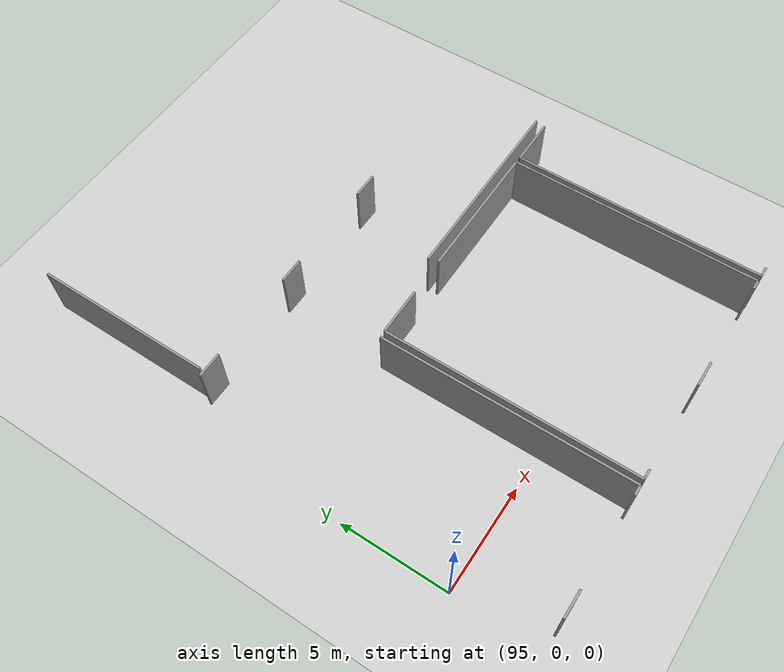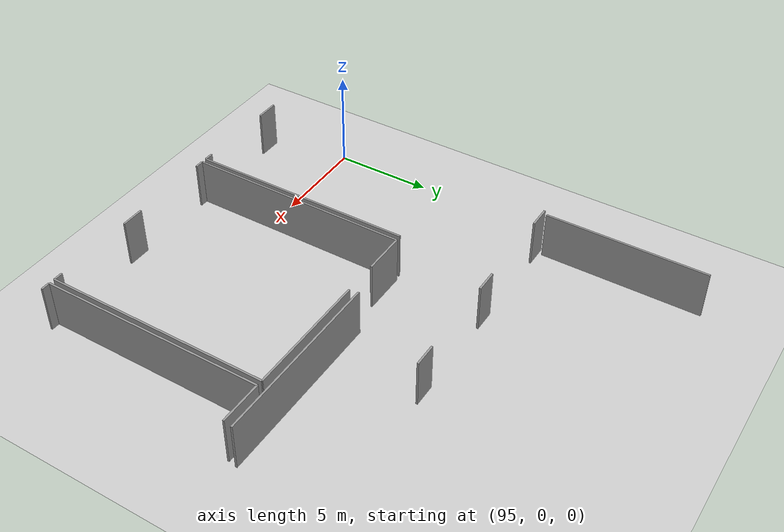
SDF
<sdf version="1.6">
 <world name="default">
  <model name="ground_plane">
   <static>1</static>
   <link name="link">
    <collision name="collision">
     <geometry><plane><normal>0 0 1</normal><size>100 100</size></plane></geometry>
     <surface><friction><ode><mu>100</mu><mu2>50</mu2></ode></friction></surface>
    </collision>
    <visual name="visual">
     <cast_shadows>0</cast_shadows>
     <geometry><plane><normal>0 0 1</normal><size>100 100</size></plane></geometry>
     <material>
      <script><uri>file://media/materials/scripts/gazebo.material</uri><name>Gazebo/Grey</name></script>
     </material>
    </visual>
   </link>
  </model>
  <model name="50037764_PLAN2">
   <static>1</static>
   <link name="Wall_421">
    <collision name="Wall_421_Collision">
     <geometry><box><size>1.18765570187 0.1 2.5</size></box></geometry>
     <pose>0.593827850933 0 1.25 0 0 0</pose>
    </collision>
    <visual name="Wall_421_Visual">
     <pose>0.593827850933 0 1.25 0 0 0</pose>
     <geometry><box><size>1.18765570187 0.1 2.5</size></box></geometry>
     <material>
      <script><uri>file://media/materials/scripts/gazebo.material</uri><name>Gazebo/Grey</name></script>
      <ambient>1 1 1 1</ambient>
     </material>
    </visual>
    <pose>244.038537801 -8.87337942956 0 0 0 3.14159265359</pose>
   </link>
   <link name="Wall_422">
    <collision name="Wall_422_Collision">
     <geometry><box><size>1.15740505364 0.1 2.5</size></box></geometry>
     <pose>0.578702526819 0 1.25 0 0 0</pose>
    </collision>
    <visual name="Wall_422_Visual">
     <pose>0.578702526819 0 1.25 0 0 0</pose>
     <geometry><box><size>1.15740505364 0.1 2.5</size></box></geometry>
     <material>
      <script><uri>file://media/materials/scripts/gazebo.material</uri><name>Gazebo/Grey</name></script>
      <ambient>1 1 1 1</ambient>
     </material>
    </visual>
    <pose>238.608927754 -8.87337942956 0 0 0 3.14159265359</pose>
   </link>
   <link name="Wall_423">
    <collision name="Wall_423_Collision">
     <geometry><box><size>1.15384615385 0.1 2.5</size></box></geometry>
     <pose>0.576923076923 0 1.25 0 0 0</pose>
    </collision>
    <visual name="Wall_423_Visual">
     <pose>0.576923076923 0 1.25 0 0 0</pose>
     <geometry><box><size>1.15384615385 0.1 2.5</size></box></geometry>
     <material>
      <script><uri>file://media/materials/scripts/gazebo.material</uri><name>Gazebo/Grey</name></script>
      <ambient>1 1 1 1</ambient>
     </material>
    </visual>
    <pose>233.223041334 -8.87337942956 0 0 0 3.14159265359</pose>
   </link>
   <link name="Wall_436">
    <collision name="Wall_436_Collision">
     <geometry><box><size>9.1865371905 0.1 2.5</size></box></geometry>
     <pose>4.59326859525 0 1.25 0 0 0</pose>
    </collision>
    <visual name="Wall_436_Visual">
     <pose>4.59326859525 0 1.25 0 0 0</pose>
     <geometry><box><size>9.1865371905 0.1 2.5</size></box></geometry>
     <material>
      <script><uri>file://media/materials/scripts/gazebo.material</uri><name>Gazebo/Grey</name></script>
      <ambient>1 1 1 1</ambient>
     </material>
    </visual>
    <pose>241.685596624 -13.3189536835 0 0 0 0.0</pose>
   </link>
   <link name="Wall_495">
    <collision name="Wall_495_Collision">
     <geometry><box><size>8.16452285322 0.1 2.5</size></box></geometry>
     <pose>4.08226142661 0 1.25 0 0 0</pose>
    </collision>
    <visual name="Wall_495_Visual">
     <pose>4.08226142661 0 1.25 0 0 0</pose>
     <geometry><box><size>8.16452285322 0.1 2.5</size></box></geometry>
     <material>
      <script><uri>file://media/materials/scripts/gazebo.material</uri><name>Gazebo/Grey</name></script>
      <ambient>1 1 1 1</ambient>
     </material>
    </visual>
    <pose>232.316284509 -8.65743047435 0 0 0 1.57079632679</pose>
   </link>
   <link name="Wall_535">
    <collision name="Wall_535_Collision">
     <geometry><box><size>0.47282525802 0.1 2.5</size></box></geometry>
     <pose>0.23641262901 0 1.25 0 0 0</pose>
    </collision>
    <visual name="Wall_535_Visual">
     <pose>0.23641262901 0 1.25 0 0 0</pose>
     <geometry><box><size>0.47282525802 0.1 2.5</size></box></geometry>
     <material>
      <script><uri>file://media/materials/scripts/gazebo.material</uri><name>Gazebo/Grey</name></script>
      <ambient>1 1 1 1</ambient>
     </material>
    </visual>
    <pose>249.026590066 -25.355635772 0 0 0 3.14159265359</pose>
   </link>
   <link name="Wall_536">
    <collision name="Wall_536_Collision">
     <geometry><box><size>11.5749148406 0.1 2.5</size></box></geometry>
     <pose>5.78745742031 0 1.25 0 0 0</pose>
    </collision>
    <visual name="Wall_536_Visual">
     <pose>5.78745742031 0 1.25 0 0 0</pose>
     <geometry><box><size>11.5749148406 0.1 2.5</size></box></geometry>
     <material>
      <script><uri>file://media/materials/scripts/gazebo.material</uri><name>Gazebo/Grey</name></script>
      <ambient>1 1 1 1</ambient>
     </material>
    </visual>
    <pose>248.553764808 -25.355635772 0 0 0 1.57079632679</pose>
   </link>
   <link name="Wall_537">
    <collision name="Wall_537_Collision">
     <geometry><box><size>2.23448065484 0.1 2.5</size></box></geometry>
     <pose>1.11724032742 0 1.25 0 0 0</pose>
    </collision>
    <visual name="Wall_537_Visual">
     <pose>1.11724032742 0 1.25 0 0 0</pose>
     <geometry><box><size>2.23448065484 0.1 2.5</size></box></geometry>
     <material>
      <script><uri>file://media/materials/scripts/gazebo.material</uri><name>Gazebo/Grey</name></script>
      <ambient>1 1 1 1</ambient>
     </material>
    </visual>
    <pose>248.553764808 -13.7807209314 0 0 0 0.0</pose>
   </link>
   <link name="Wall_540">
    <collision name="Wall_540_Collision">
     <geometry><box><size>0.465199044181 0.1 2.5</size></box></geometry>
     <pose>0.232599522091 0 1.25 0 0 0</pose>
    </collision>
    <visual name="Wall_540_Visual">
     <pose>0.232599522091 0 1.25 0 0 0</pose>
     <geometry><box><size>0.465199044181 0.1 2.5</size></box></geometry>
     <material>
      <script><uri>file://media/materials/scripts/gazebo.material</uri><name>Gazebo/Grey</name></script>
      <ambient>1 1 1 1</ambient>
     </material>
    </visual>
    <pose>248.246174183 -25.3408917586 0 0 0 3.14159265359</pose>
   </link>
   <link name="Wall_541">
    <collision name="Wall_541_Collision">
     <geometry><box><size>1.20494178657 0.1 2.5</size></box></geometry>
     <pose>0.602470893284 0 1.25 0 0 0</pose>
    </collision>
    <visual name="Wall_541_Visual">
     <pose>0.602470893284 0 1.25 0 0 0</pose>
     <geometry><box><size>1.20494178657 0.1 2.5</size></box></geometry>
     <material>
      <script><uri>file://media/materials/scripts/gazebo.material</uri><name>Gazebo/Grey</name></script>
      <ambient>1 1 1 1</ambient>
     </material>
    </visual>
    <pose>243.617062382 -25.3408917586 0 0 0 3.14159265359</pose>
   </link>
   <link name="Wall_542">
    <collision name="Wall_542_Collision">
     <geometry><box><size>0.457064416086 0.1 2.5</size></box></geometry>
     <pose>0.228532208043 0 1.25 0 0 0</pose>
    </collision>
    <visual name="Wall_542_Visual">
     <pose>0.228532208043 0 1.25 0 0 0</pose>
     <geometry><box><size>0.457064416086 0.1 2.5</size></box></geometry>
     <material>
      <script><uri>file://media/materials/scripts/gazebo.material</uri><name>Gazebo/Grey</name></script>
      <ambient>1 1 1 1</ambient>
     </material>
    </visual>
    <pose>238.190757029 -25.3408917586 0 0 0 3.14159265359</pose>
   </link>
   <link name="Wall_543">
    <collision name="Wall_543_Collision">
     <geometry><box><size>11.5789567339 0.1 2.5</size></box></geometry>
     <pose>5.78947836697 0 1.25 0 0 0</pose>
    </collision>
    <visual name="Wall_543_Visual">
     <pose>5.78947836697 0 1.25 0 0 0</pose>
     <geometry><box><size>11.5789567339 0.1 2.5</size></box></geometry>
     <material>
      <script><uri>file://media/materials/scripts/gazebo.material</uri><name>Gazebo/Grey</name></script>
      <ambient>1 1 1 1</ambient>
     </material>
    </visual>
    <pose>237.733692613 -25.3408917586 0 0 0 1.57079632679</pose>
   </link>
   <link name="Wall_544">
    <collision name="Wall_544_Collision">
     <geometry><box><size>2.22405816259 0.1 2.5</size></box></geometry>
     <pose>1.1120290813 0 1.25 0 0 0</pose>
    </collision>
    <visual name="Wall_544_Visual">
     <pose>1.1120290813 0 1.25 0 0 0</pose>
     <geometry><box><size>2.22405816259 0.1 2.5</size></box></geometry>
     <material>
      <script><uri>file://media/materials/scripts/gazebo.material</uri><name>Gazebo/Grey</name></script>
      <ambient>1 1 1 1</ambient>
     </material>
    </visual>
    <pose>237.733692613 -13.7619350247 0 0 0 0.0</pose>
   </link>
   <link name="Wall_545">
    <collision name="Wall_545_Collision">
     <geometry><box><size>6.49092480553 0.1 2.5</size></box></geometry>
     <pose>3.24546240277 0 1.25 0 0 0</pose>
    </collision>
    <visual name="Wall_545_Visual">
     <pose>3.24546240277 0 1.25 0 0 0</pose>
     <geometry><box><size>6.49092480553 0.1 2.5</size></box></geometry>
     <material>
      <script><uri>file://media/materials/scripts/gazebo.material</uri><name>Gazebo/Grey</name></script>
      <ambient>1 1 1 1</ambient>
     </material>
    </visual>
    <pose>241.767959734 -13.7619350247 0 0 0 0.0</pose>
   </link>
   <link name="Wall_546">
    <collision name="Wall_546_Collision">
     <geometry><box><size>11.5789637101 0.1 2.5</size></box></geometry>
     <pose>5.78948185505 0 1.25 0 0 0</pose>
    </collision>
    <visual name="Wall_546_Visual">
     <pose>5.78948185505 0 1.25 0 0 0</pose>
     <geometry><box><size>11.5789637101 0.1 2.5</size></box></geometry>
     <material>
      <script><uri>file://media/materials/scripts/gazebo.material</uri><name>Gazebo/Grey</name></script>
      <ambient>1 1 1 1</ambient>
     </material>
    </visual>
    <pose>248.258884539 -13.7619350247 0 0 0 -1.57189403806</pose>
   </link>
   <link name="Wall_547">
    <collision name="Wall_547_Collision">
     <geometry><box><size>0.467486908333 0.1 2.5</size></box></geometry>
     <pose>0.233743454166 0 1.25 0 0 0</pose>
    </collision>
    <visual name="Wall_547_Visual">
     <pose>0.233743454166 0 1.25 0 0 0</pose>
     <geometry><box><size>0.467486908333 0.1 2.5</size></box></geometry>
     <material>
      <script><uri>file://media/materials/scripts/gazebo.material</uri><name>Gazebo/Grey</name></script>
      <ambient>1 1 1 1</ambient>
     </material>
    </visual>
    <pose>237.441100208 -25.3403833443 0 0 0 3.14159265359</pose>
   </link>
   <link name="Wall_548">
    <collision name="Wall_548_Collision">
     <geometry><box><size>1.22324469978 0.1 2.5</size></box></geometry>
     <pose>0.611622349891 0 1.25 0 0 0</pose>
    </collision>
    <visual name="Wall_548_Visual">
     <pose>0.611622349891 0 1.25 0 0 0</pose>
     <geometry><box><size>1.22324469978 0.1 2.5</size></box></geometry>
     <material>
      <script><uri>file://media/materials/scripts/gazebo.material</uri><name>Gazebo/Grey</name></script>
      <ambient>1 1 1 1</ambient>
     </material>
    </visual>
    <pose>232.816564136 -25.3403833443 0 0 0 3.14159265359</pose>
   </link>
   <link name="Wall_553">
    <collision name="Wall_553_Collision">
     <geometry><box><size>11.5643526503 0.1 2.5</size></box></geometry>
     <pose>5.78217632515 0 1.25 0 0 0</pose>
    </collision>
    <visual name="Wall_553_Visual">
     <pose>5.78217632515 0 1.25 0 0 0</pose>
     <geometry><box><size>11.5643526503 0.1 2.5</size></box></geometry>
     <material>
      <script><uri>file://media/materials/scripts/gazebo.material</uri><name>Gazebo/Grey</name></script>
      <ambient>1 1 1 1</ambient>
     </material>
    </visual>
    <pose>237.411357974 -13.776068941 0 0 0 -1.56822443473</pose>
   </link>
   <pose>-135.8 21.3069729015 0 0 0 0</pose>
  </model>
 </world>
</sdf>
